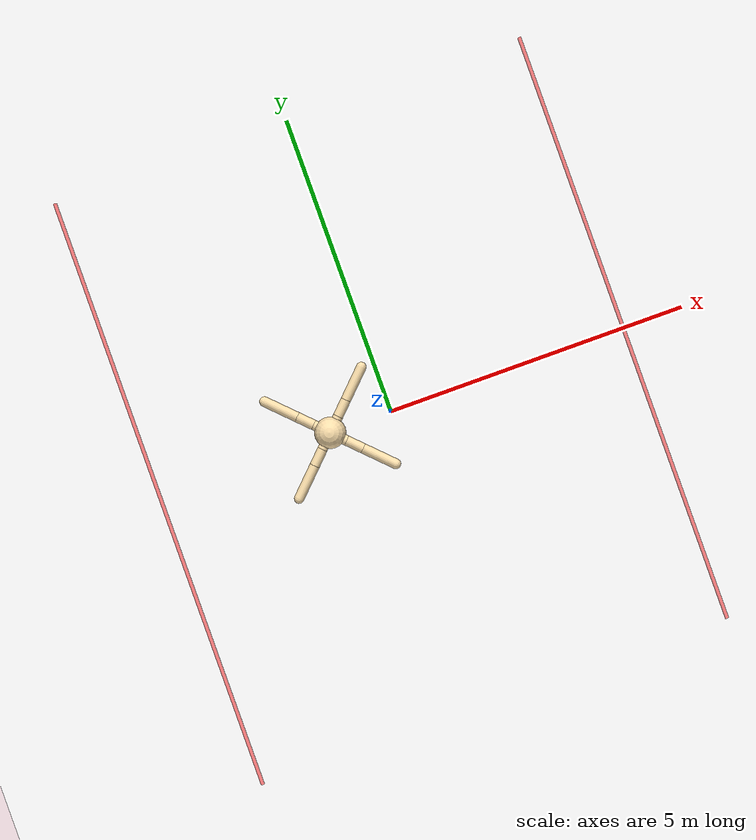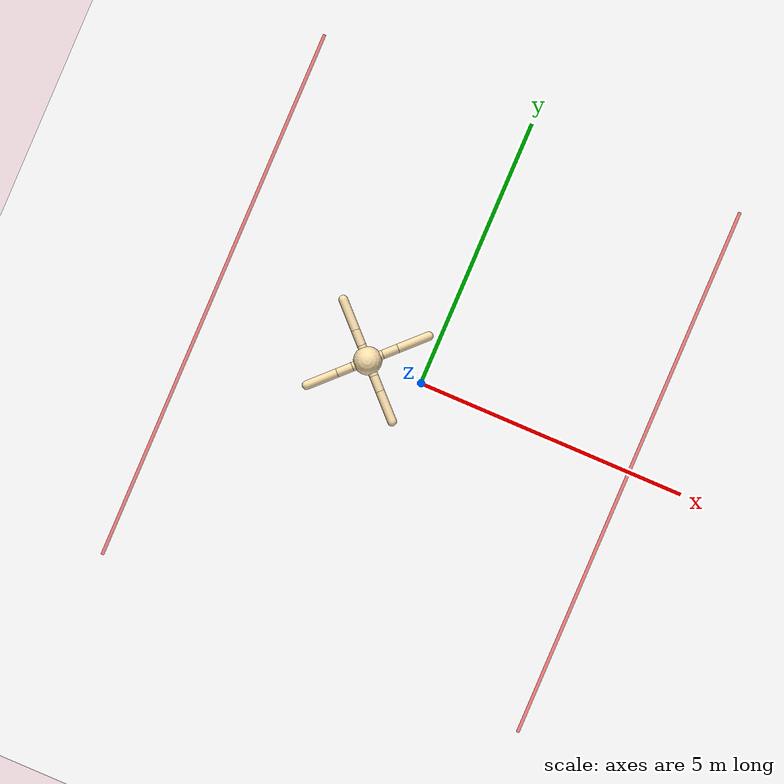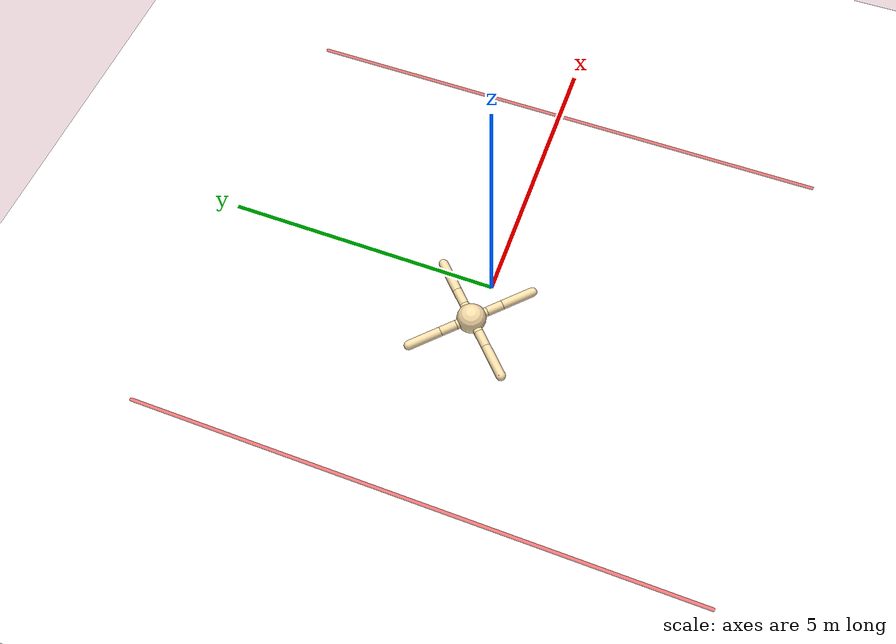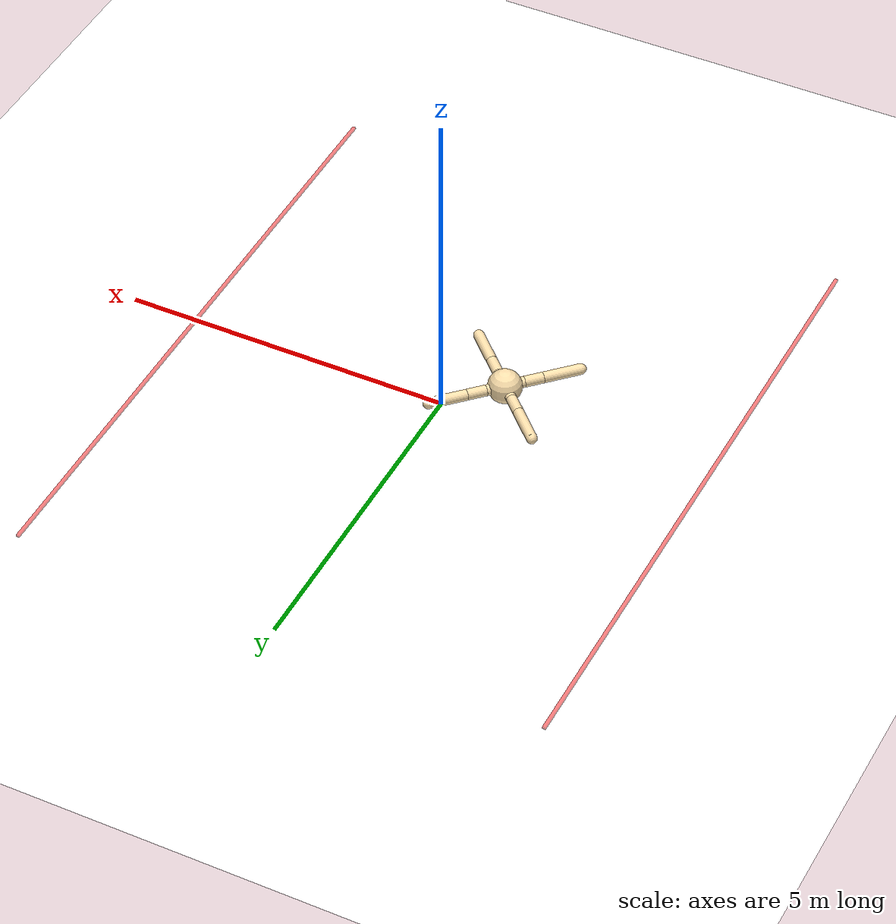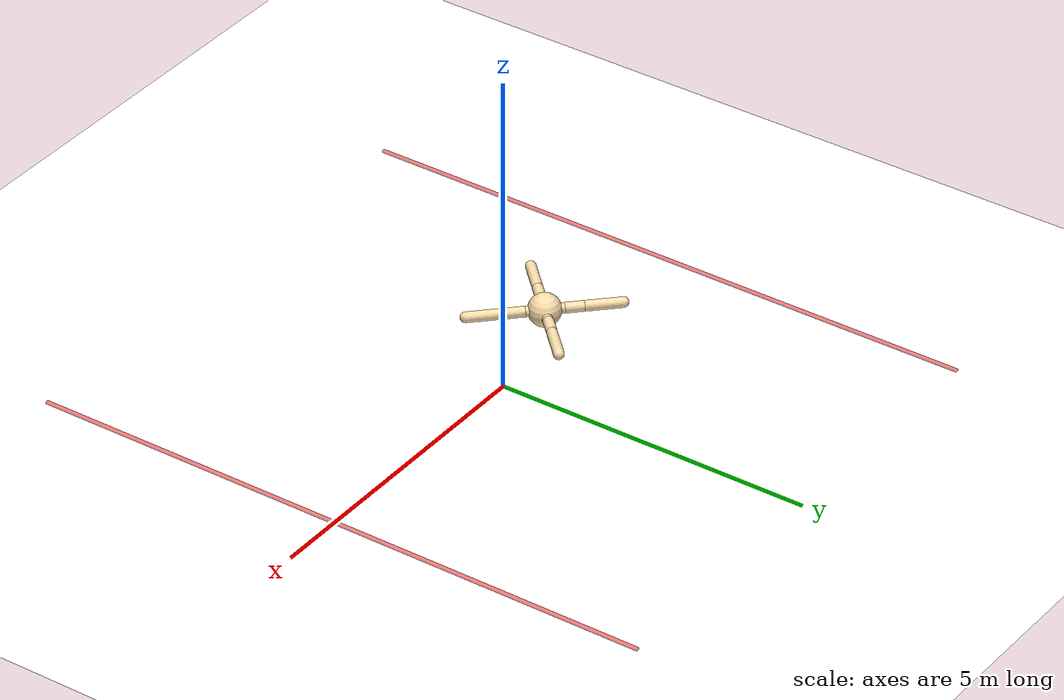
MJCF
<mujoco model="mutiagent_world">
  <compiler angle="degree" coordinate="local" inertiafromgeom="true" />

  <option integrator="RK4" timestep="0.003" solver="PGS" iterations="1000" />

  <default>
    <joint armature="1" damping="1" limited="true" />
  <default class="agent0"><joint armature="1" damping="1" limited="true" />
    <geom conaffinity="0" condim="3" density="5.0" friction="1 0.5 0.5" margin="0.01" rgba="0.98 0.87 0.67 1" material="geom" contype="1" />
  </default></default>

  <visual>
    <headlight ambient=".1 .1 .1" diffuse=".6 .6 .6" specular="0.3 0.3 0.3" />
    <map znear=".01" />
    <quality shadowsize="16384" />
  </visual>

  <asset>
    <texture builtin="gradient" height="100" rgb1=".4 .5 .6" rgb2="0 0 0" type="skybox" width="100" />
    <texture builtin="flat" height="1278" mark="cross" markrgb="0 0 0" name="texgeom" random="0.01" rgb1="0.8 0.6 0.4" rgb2="0.8 0.6 0.4" type="cube" width="127" />
    <texture builtin="checker" height="100" name="texplane" rgb1="0 0 0" rgb2="0.8 0.8 0.8" type="2d" width="100" />
    <texture name="MatPlane" type="2d" builtin="checker" rgb1=".5 .5 .5" rgb2=".5 .5 .5" width="300" height="300" mark="edge" markrgb="0.1 0.1 0.1" />
    <material name="MatPlane" texture="MatPlane" texrepeat="2 2" texuniform="true" reflectance=".2" />
    <material name="geom" texture="texgeom" texuniform="true" />
  </asset>

  <worldbody>
    <light cutoff="100" diffuse="1 1 1" dir="-0 0 -1.3" directional="true" exponent="1" pos="0 0 1.3" specular=".1 .1 .1" />
    <geom contype="1" conaffinity="1" friction="1 .1 .1" condim="3" material="MatPlane" name="floor" pos="0 0 0" rgba="1 1 1 1" size="20 20 0.125" type="plane" />
    <geom fromto="4 -5 0  4 +5 0" name="rightgoal" rgba="1 0 0 0.5" size=".03" type="cylinder" />
    <geom fromto="-4 -5 0  -4 +5 0" name="leftgoal" rgba="1 0 0 0.5" size=".03" type="cylinder" />
  <body name="agent0/0" pos="-1 0 0.75" euler="0 0 0">
    <geom pos="0 0 0" size="0.25" type="sphere" class="agent0" name="agent0/anon5631625273" />
    <joint armature="0" damping="0" limited="false" margin="0.01" name="agent0/0_joint" pos="0 0 0" range="-30 30" type="free" />
    <body name="agent0/1" pos="0 0 0">
      <geom fromto="0 0 0 0.2 0.2 0" size="0.08" type="capsule" class="agent0" name="agent0/anon8864487428" />
      <body name="agent0/11" pos="0.2 0.2 0">
        <joint axis="0 0 1" name="agent0/11_joint" pos="0 0 0" range="-30 30" type="hinge" />
        <geom fromto="0.0 0.0 0.0 0.2 0.2 0.0" size="0.08" type="capsule" class="agent0" name="agent0/anon9301537696" />
        <body name="agent0/111" pos="0.2 0.2 0">
          <geom fromto="0 0 0 0.4 0.4 0" size="0.08" type="capsule" class="agent0" name="agent0/anon4051155264" />
          <joint axis="-0.707107 0.707107 0" name="agent0/111_joint" pos="0 0 0" range="30 70" type="hinge" />
        </body>
      </body>
    </body>
    <body name="agent0/2" pos="0 0 0">
      <geom fromto="0 0 0 -0.2 0.2 0" size="0.08" type="capsule" class="agent0" name="agent0/anon5921857379" />
      <body name="agent0/12" pos="-0.2 0.2 0">
        <joint axis="0 0 1" name="agent0/12_joint" pos="0 0 0" range="-30 30" type="hinge" />
        <geom fromto="0.0 0.0 0.0 -0.2 0.2 0.0" size="0.08" type="capsule" class="agent0" name="agent0/anon6175326182" />
        <body name="agent0/112" pos="-0.2 0.2 0">
          <geom fromto="0 0 0 -0.4 0.4 0" size="0.08" type="capsule" class="agent0" name="agent0/anon570963170" />
          <joint axis="-0.707107 -0.707107 0" name="agent0/112_joint" pos="0 0 0" range="30 70" type="hinge" />
        </body>
      </body>
    </body>

    <body name="agent0/3" pos="0 0 0">
      <geom fromto="0 0 0 -0.2 -0.2 0" size="0.08" type="capsule" class="agent0" name="agent0/anon6536115131" />
      <body name="agent0/13" pos="-0.2 -0.2 0">
        <joint axis="0 0 1" name="agent0/13_joint" pos="0 0 0" range="-30 30" type="hinge" />
        <geom fromto="0 0 0 -0.2 -0.2 0" size="0.08" type="capsule" class="agent0" name="agent0/anon4617592934" />
        <body name="agent0/113" pos="-0.2 -0.2 0">
          <geom fromto="0 0 0 -0.4 -0.4 0" size="0.08" type="capsule" class="agent0" name="agent0/anon7048872937" />
          <joint axis="0.707107 -0.707107 0" name="agent0/113_joint" pos="0 0 0" range="30 70" type="hinge" />
        </body>
      </body>
    </body>

    <body name="agent0/4" pos="0 0 0">
      <geom fromto="0 0 0 0.2 -0.2 0" size="0.08" type="capsule" class="agent0" name="agent0/anon3265641631" />
      <body name="agent0/14" pos="0.2 -0.2 0">
        <joint axis="0 0 1" name="agent0/14_joint" pos="0 0 0" range="-30 30" type="hinge" />
        <geom fromto="0 0 0 0.2 -0.2 0" size="0.08" type="capsule" class="agent0" name="agent0/anon8072243876" />
        <body name="agent0/114" pos="0.2 -0.2 0">
          <geom fromto="0 0 0 0.4 -0.4 0" size="0.08" type="capsule" class="agent0" name="agent0/anon1658659835" />
          <joint axis="0.707107 0.707107 0" name="agent0/114_joint" pos="0 0 0" range="30 70" type="hinge" />
        </body>
      </body>
    </body>
  </body>

  </worldbody>
<actuator>
    <motor ctrllimited="true" ctrlrange="-1.0 1.0" joint="agent0/11_joint" gear="150" name="agent0/11_joint" class="agent0" />
    <motor ctrllimited="true" ctrlrange="-1.0 1.0" joint="agent0/12_joint" gear="150" name="agent0/12_joint" class="agent0" />
    <motor ctrllimited="true" ctrlrange="-1.0 1.0" joint="agent0/13_joint" gear="150" name="agent0/13_joint" class="agent0" />
    <motor ctrllimited="true" ctrlrange="-1.0 1.0" joint="agent0/14_joint" gear="150" name="agent0/14_joint" class="agent0" />
    <motor ctrllimited="true" ctrlrange="-1.0 1.0" joint="agent0/111_joint" gear="150" name="agent0/111_joint" class="agent0" />
    <motor ctrllimited="true" ctrlrange="-1.0 1.0" joint="agent0/112_joint" gear="150" name="agent0/112_joint" class="agent0" />
    <motor ctrllimited="true" ctrlrange="-1.0 1.0" joint="agent0/113_joint" gear="150" name="agent0/113_joint" class="agent0" />
    <motor ctrllimited="true" ctrlrange="-1.0 1.0" joint="agent0/114_joint" gear="150" name="agent0/114_joint" class="agent0" />
  </actuator>
  </mujoco>
